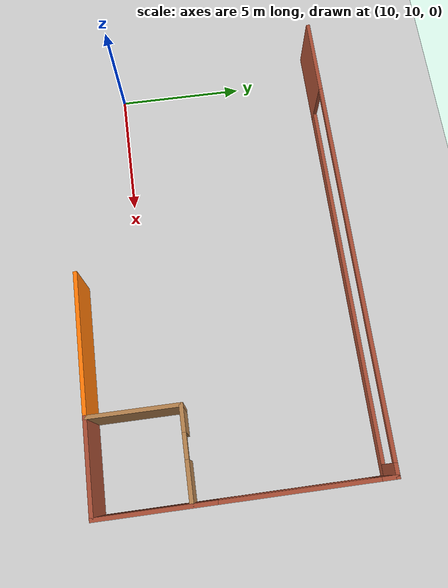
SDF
<sdf version="1.6">
 <world name="default">
  <model name="ground_plane">
   <static>1</static>
   <link name="link">
    <collision name="collision">
     <geometry><plane><normal>0 0 1</normal><size>100 100</size></plane></geometry>
     <surface><friction><ode><mu>100</mu><mu2>50</mu2></ode></friction></surface>
    </collision>
    <visual name="visual">
     <cast_shadows>0</cast_shadows>
     <geometry><plane><normal>0 0 1</normal><size>100 100</size></plane></geometry>
     <material>
      <script><uri>file://media/materials/scripts/gazebo.material</uri><name>Gazebo/Grey</name></script>
     </material>
    </visual>
   </link>
  </model>
  <model name="spiral_office">
   <link name="Wall_14">
    <pose>17.9154 18.1506 0 0 -0 0</pose>
    <visual name="Wall_14_Visual_0">
     <pose>-7.57768 0 1.25 0 -0 0</pose>
     <geometry><box><size>3.09465 0.15 2.5</size></box></geometry>
     <material>
      <script><uri>file://media/materials/scripts/gazebo.material</uri><name>Gazebo/Bricks</name></script>
      <ambient>1 1 1 1</ambient>
     </material>
     <meta><layer>0</layer></meta>
    </visual>
    <collision name="Wall_14_Collision_0">
     <geometry><box><size>3.09465 0.15 2.5</size></box></geometry>
     <pose>-7.57768 0 1.25 0 -0 0</pose>
    </collision>
    <visual name="Wall_14_Visual_1">
     <pose>1.54732 0 0.25 0 -0 0</pose>
     <geometry><box><size>15.1554 0.15 0.5</size></box></geometry>
     <material>
      <script><uri>file://media/materials/scripts/gazebo.material</uri><name>Gazebo/Bricks</name></script>
      <ambient>1 1 1 1</ambient>
     </material>
     <meta><layer>0</layer></meta>
    </visual>
    <collision name="Wall_14_Collision_1">
     <geometry><box><size>15.1554 0.15 0.5</size></box></geometry>
     <pose>1.54732 0 0.25 0 -0 0</pose>
    </collision>
    <visual name="Wall_14_Visual_2">
     <pose>8.85582 0 1.5 0 -0 0</pose>
     <geometry><box><size>0.538352 0.15 2</size></box></geometry>
     <material>
      <script><uri>file://media/materials/scripts/gazebo.material</uri><name>Gazebo/Bricks</name></script>
      <ambient>1 1 1 1</ambient>
     </material>
     <meta><layer>0</layer></meta>
    </visual>
    <collision name="Wall_14_Collision_2">
     <geometry><box><size>0.538352 0.15 2</size></box></geometry>
     <pose>8.85582 0 1.5 0 -0 0</pose>
    </collision>
    <visual name="Wall_14_Visual_3">
     <pose>1.27815 0 2.4 0 -0 0</pose>
     <geometry><box><size>14.617 0.15 0.2</size></box></geometry>
     <material>
      <script><uri>file://media/materials/scripts/gazebo.material</uri><name>Gazebo/Bricks</name></script>
      <ambient>1 1 1 1</ambient>
     </material>
     <meta><layer>0</layer></meta>
    </visual>
    <collision name="Wall_14_Collision_3">
     <geometry><box><size>14.617 0.15 0.2</size></box></geometry>
     <pose>1.27815 0 2.4 0 -0 0</pose>
    </collision>
   </link>
   <link name="Wall_15">
    <pose>26.9654 12.9756 0 0 0 -1.5708</pose>
    <visual name="Wall_15_Visual_0">
     <pose>-4.93489 0 1.25 0 -0 0</pose>
     <geometry><box><size>0.630216 0.15 2.5</size></box></geometry>
     <material>
      <script><uri>file://media/materials/scripts/gazebo.material</uri><name>Gazebo/Bricks</name></script>
      <ambient>1 1 1 1</ambient>
     </material>
     <meta><layer>0</layer></meta>
    </visual>
    <collision name="Wall_15_Collision_0">
     <geometry><box><size>0.630216 0.15 2.5</size></box></geometry>
     <pose>-4.93489 0 1.25 0 -0 0</pose>
    </collision>
    <visual name="Wall_15_Visual_1">
     <pose>0.315108 0 0.25 0 -0 0</pose>
     <geometry><box><size>9.86978 0.15 0.5</size></box></geometry>
     <material>
      <script><uri>file://media/materials/scripts/gazebo.material</uri><name>Gazebo/Bricks</name></script>
      <ambient>1 1 1 1</ambient>
     </material>
     <meta><layer>0</layer></meta>
    </visual>
    <collision name="Wall_15_Collision_1">
     <geometry><box><size>9.86978 0.15 0.5</size></box></geometry>
     <pose>0.315108 0 0.25 0 -0 0</pose>
    </collision>
    <visual name="Wall_15_Visual_2">
     <pose>3.09761 0 1.5 0 -0 0</pose>
     <geometry><box><size>4.30478 0.15 2</size></box></geometry>
     <material>
      <script><uri>file://media/materials/scripts/gazebo.material</uri><name>Gazebo/Bricks</name></script>
      <ambient>1 1 1 1</ambient>
     </material>
     <meta><layer>0</layer></meta>
    </visual>
    <collision name="Wall_15_Collision_2">
     <geometry><box><size>4.30478 0.15 2</size></box></geometry>
     <pose>3.09761 0 1.5 0 -0 0</pose>
    </collision>
    <visual name="Wall_15_Visual_3">
     <pose>-1.83728 0 2.4 0 -0 0</pose>
     <geometry><box><size>5.565 0.15 0.2</size></box></geometry>
     <material>
      <script><uri>file://media/materials/scripts/gazebo.material</uri><name>Gazebo/Bricks</name></script>
      <ambient>1 1 1 1</ambient>
     </material>
     <meta><layer>0</layer></meta>
    </visual>
    <collision name="Wall_15_Collision_3">
     <geometry><box><size>5.565 0.15 0.2</size></box></geometry>
     <pose>-1.83728 0 2.4 0 -0 0</pose>
    </collision>
   </link>
   <link name="Wall_16">
    <collision name="Wall_16_Collision">
     <geometry><box><size>3.50167 0.15 2.5</size></box></geometry>
     <pose>0 0 1.25 0 -0 0</pose>
    </collision>
    <visual name="Wall_16_Visual">
     <pose>0 0 1.25 0 -0 0</pose>
     <geometry><box><size>3.50167 0.15 2.5</size></box></geometry>
     <material>
      <script><uri>file://media/materials/scripts/gazebo.material</uri><name>Gazebo/Bricks</name></script>
      <ambient>1 1 1 1</ambient>
     </material>
     <meta><layer>0</layer></meta>
    </visual>
    <pose>25.2895 7.80063 0 0 0 -3.14159</pose>
   </link>
   <link name="Wall_33">
    <collision name="Wall_33_Collision">
     <geometry><box><size>3.50059 0.15 2.5</size></box></geometry>
     <pose>0 0 1.25 0 -0 0</pose>
    </collision>
    <visual name="Wall_33_Visual">
     <pose>0 0 1.25 0 -0 0</pose>
     <geometry><box><size>3.50059 0.15 2.5</size></box></geometry>
     <material>
      <script><uri>file://media/materials/scripts/gazebo.material</uri><name>Gazebo/Wood</name></script>
      <ambient>1 1 1 1</ambient>
     </material>
     <meta><layer>0</layer></meta>
    </visual>
    <pose>23.6137 9.47563 0 0 -0 1.5708</pose>
   </link>
   <link name="Wall_34">
    <pose>25.2687 11.1506 0 0 -0 0</pose>
    <visual name="Wall_34_Visual_0">
     <pose>-1.21905 0 1.25 0 -0 0</pose>
     <geometry><box><size>1.02189 0.15 2.5</size></box></geometry>
     <material>
      <script><uri>file://media/materials/scripts/gazebo.material</uri><name>Gazebo/Wood</name></script>
      <ambient>1 1 1 1</ambient>
     </material>
     <meta><layer>0</layer></meta>
    </visual>
    <collision name="Wall_34_Collision_0">
     <geometry><box><size>1.02189 0.15 2.5</size></box></geometry>
     <pose>-1.21905 0 1.25 0 -0 0</pose>
    </collision>
    <visual name="Wall_34_Visual_1">
     <pose>0.960945 0 1.25 0 -0 0</pose>
     <geometry><box><size>1.53811 0.15 2.5</size></box></geometry>
     <material>
      <script><uri>file://media/materials/scripts/gazebo.material</uri><name>Gazebo/Wood</name></script>
      <ambient>1 1 1 1</ambient>
     </material>
     <meta><layer>0</layer></meta>
    </visual>
    <collision name="Wall_34_Collision_1">
     <geometry><box><size>1.53811 0.15 2.5</size></box></geometry>
     <pose>0.960945 0 1.25 0 -0 0</pose>
    </collision>
    <visual name="Wall_34_Visual_2">
     <pose>-0.25811 0 2.25 0 -0 0</pose>
     <geometry><box><size>0.9 0.15 0.5</size></box></geometry>
     <material>
      <script><uri>file://media/materials/scripts/gazebo.material</uri><name>Gazebo/Wood</name></script>
      <ambient>1 1 1 1</ambient>
     </material>
     <meta><layer>0</layer></meta>
    </visual>
    <collision name="Wall_34_Collision_2">
     <geometry><box><size>0.9 0.15 0.5</size></box></geometry>
     <pose>-0.25811 0 2.25 0 -0 0</pose>
    </collision>
   </link>
   <link name="Wall_97">
    <collision name="Wall_97_Collision">
     <geometry><box><size>5.399 0.15 2.5</size></box></geometry>
     <pose>0 0 1.25 0 -0 0</pose>
    </collision>
    <visual name="Wall_97_Visual">
     <pose>0 0 1.25 0 -0 0</pose>
     <geometry><box><size>5.399 0.15 2.5</size></box></geometry>
     <material>
      <script><uri>file://media/materials/scripts/gazebo.material</uri><name>Gazebo/Grey</name></script>
      <ambient>0.996078 0.47451 0.0196078 1</ambient>
     </material>
     <meta><layer>0</layer></meta>
    </visual>
    <pose>20.9892 7.80063 0 0 -0 3.14159</pose>
   </link>
   <static>1</static>
  </model>
 </world>
</sdf>
